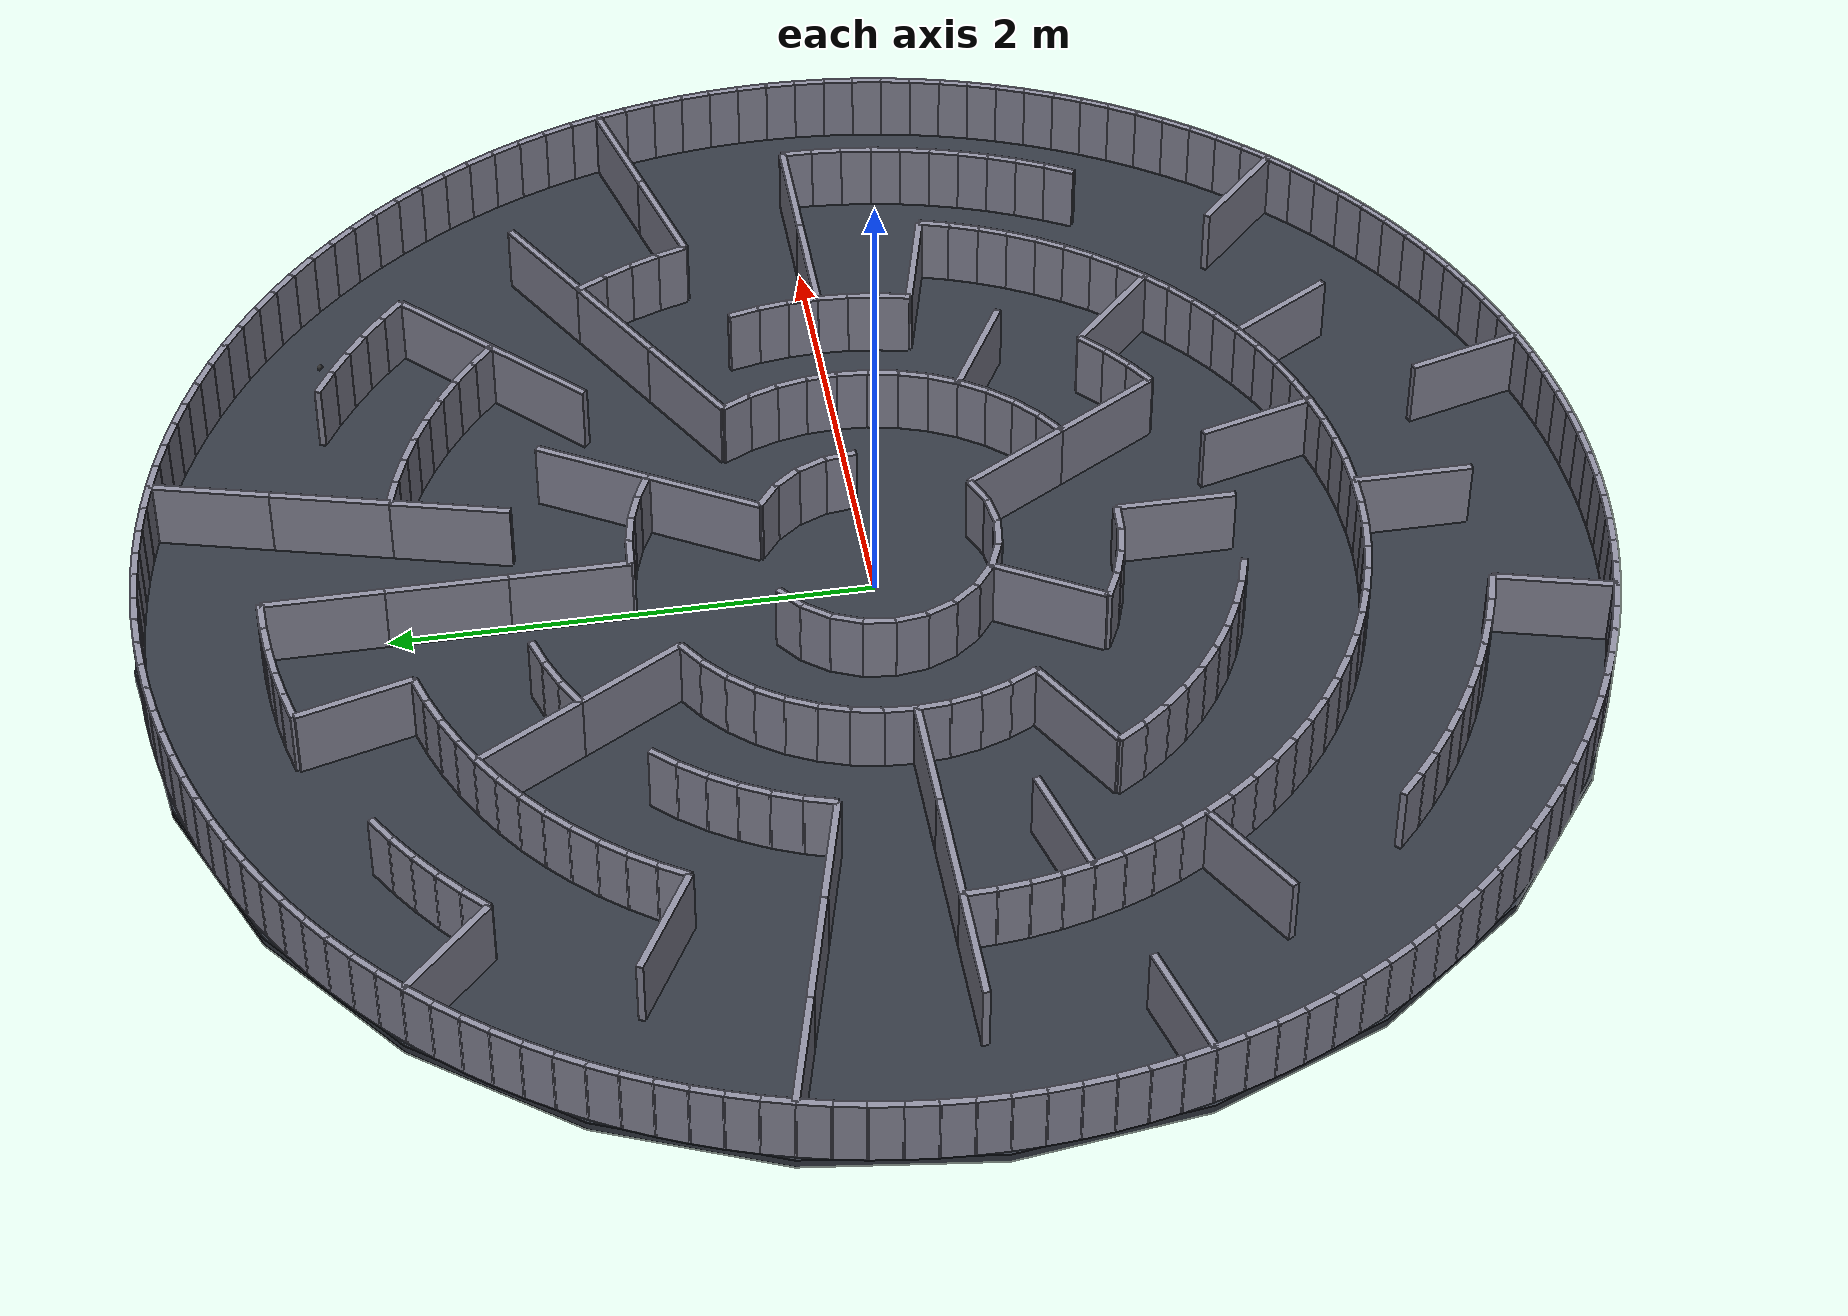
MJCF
<mujoco model="polar_maze">
  <compiler angle="degree" autolimits="true"/>
  <option timestep="0.005" integrator="implicitfast" gravity="0 0 -9.81"/>
  <visual>
    <global offwidth="1200" offheight="1200"/>
  </visual>

  <default>
    <default class="wall">
      <geom type="box" rgba="0.55 0.55 0.62 1" contype="1" conaffinity="1"/>
    </default>
    <default class="bot_body">
      <geom rgba="0.85 0.25 0.15 1" contype="2" conaffinity="1" mass="0.9" group="3"/>
    </default>
    <default class="bot_marker">
      <geom rgba="1 1 1 1" contype="0" conaffinity="0" mass="0.001" group="3"/>
    </default>
    <default class="wheel">
      <geom rgba="0.15 0.15 0.15 1" contype="2" conaffinity="1" mass="0.05" group="3"/>
    </default>
  </default>

  <asset>
    <texture name="grid" type="2d" builtin="checker" rgb1="0.18 0.2 0.24" rgb2="0.22 0.24 0.28"
             width="512" height="512"/>
    <material name="floor_mat" texture="grid" texrepeat="30 30" reflectance="0.05"/>
    <texture name="sky" type="skybox" builtin="gradient" rgb1="0.55 0.65 0.8" rgb2="0.05 0.05 0.1" width="256" height="256"/>
  </asset>

  <worldbody>
    <light name="top_light" pos="0 0 7.50" dir="0 0 -1" diffuse="0.9 0.9 0.9" directional="true"/>
    <light name="fill_light" pos="3.00 3.00 3.00" diffuse="0.35 0.35 0.35" directional="true"/>
    <geom name="floor" type="cylinder" size="3.0300 0.02" pos="0 0 -0.02"
          material="floor_mat" contype="1" conaffinity="1"/>

    <geom name="wr_0" type="box" pos="0.37500 0.64952 0.15000" euler="0 0 -30.00000" size="0.01500 0.25000 0.15000" class="wall"/>
    <geom name="wr_1" type="box" pos="-0.37500 -0.64952 0.15000" euler="0 0 150.00000" size="0.01500 0.25000 0.15000" class="wall"/>
    <geom name="wr_2" type="box" pos="0.37500 -0.64952 0.15000" euler="0 0 210.00000" size="0.01500 0.25000 0.15000" class="wall"/>
    <geom name="wr_3" type="box" pos="1.08253 0.62500 0.15000" euler="0 0 -60.00000" size="0.01500 0.25000 0.15000" class="wall"/>
    <geom name="wr_4" type="box" pos="0.62500 1.08253 0.15000" euler="0 0 -30.00000" size="0.01500 0.25000 0.15000" class="wall"/>
    <geom name="wr_5" type="box" pos="0.00000 1.25000 0.15000" euler="0 0 0.00000" size="0.01500 0.25000 0.15000" class="wall"/>
    <geom name="wr_6" type="box" pos="-0.62500 1.08253 0.15000" euler="0 0 30.00000" size="0.01500 0.25000 0.15000" class="wall"/>
    <geom name="wr_7" type="box" pos="-1.25000 0.00000 0.15000" euler="0 0 90.00000" size="0.01500 0.25000 0.15000" class="wall"/>
    <geom name="wr_8" type="box" pos="-1.08253 -0.62500 0.15000" euler="0 0 120.00000" size="0.01500 0.25000 0.15000" class="wall"/>
    <geom name="wr_9" type="box" pos="-0.00000 -1.25000 0.15000" euler="0 0 180.00000" size="0.01500 0.25000 0.15000" class="wall"/>
    <geom name="wr_10" type="box" pos="0.62500 -1.08253 0.15000" euler="0 0 210.00000" size="0.01500 0.25000 0.15000" class="wall"/>
    <geom name="wr_11" type="box" pos="1.08253 -0.62500 0.15000" euler="0 0 240.00000" size="0.01500 0.25000 0.15000" class="wall"/>
    <geom name="wr_12" type="box" pos="1.51554 0.87500 0.15000" euler="0 0 -60.00000" size="0.01500 0.25000 0.15000" class="wall"/>
    <geom name="wr_13" type="box" pos="1.23744 1.23744 0.15000" euler="0 0 -45.00000" size="0.01500 0.25000 0.15000" class="wall"/>
    <geom name="wr_14" type="box" pos="0.45293 1.69037 0.15000" euler="0 0 -15.00000" size="0.01500 0.25000 0.15000" class="wall"/>
    <geom name="wr_15" type="box" pos="0.00000 1.75000 0.15000" euler="0 0 -0.00000" size="0.01500 0.25000 0.15000" class="wall"/>
    <geom name="wr_16" type="box" pos="-0.87500 1.51554 0.15000" euler="0 0 30.00000" size="0.01500 0.25000 0.15000" class="wall"/>
    <geom name="wr_17" type="box" pos="-1.69037 0.45293 0.15000" euler="0 0 75.00000" size="0.01500 0.25000 0.15000" class="wall"/>
    <geom name="wr_18" type="box" pos="-1.75000 0.00000 0.15000" euler="0 0 90.00000" size="0.01500 0.25000 0.15000" class="wall"/>
    <geom name="wr_19" type="box" pos="-1.69037 -0.45293 0.15000" euler="0 0 105.00000" size="0.01500 0.25000 0.15000" class="wall"/>
    <geom name="wr_20" type="box" pos="0.45293 -1.69037 0.15000" euler="0 0 195.00000" size="0.01500 0.25000 0.15000" class="wall"/>
    <geom name="wr_21" type="box" pos="1.23744 -1.23744 0.15000" euler="0 0 225.00000" size="0.01500 0.25000 0.15000" class="wall"/>
    <geom name="wr_22" type="box" pos="1.69037 -0.45293 0.15000" euler="0 0 255.00000" size="0.01500 0.25000 0.15000" class="wall"/>
    <geom name="wr_23" type="box" pos="1.75000 -0.00000 0.15000" euler="0 0 270.00000" size="0.01500 0.25000 0.15000" class="wall"/>
    <geom name="wr_24" type="box" pos="2.17333 0.58234 0.15000" euler="0 0 -75.00000" size="0.01500 0.25000 0.15000" class="wall"/>
    <geom name="wr_25" type="box" pos="1.94856 1.12500 0.15000" euler="0 0 -60.00000" size="0.01500 0.25000 0.15000" class="wall"/>
    <geom name="wr_26" type="box" pos="1.59099 1.59099 0.15000" euler="0 0 -45.00000" size="0.01500 0.25000 0.15000" class="wall"/>
    <geom name="wr_27" type="box" pos="0.58234 2.17333 0.15000" euler="0 0 -15.00000" size="0.01500 0.25000 0.15000" class="wall"/>
    <geom name="wr_28" type="box" pos="0.00000 2.25000 0.15000" euler="0 0 -0.00000" size="0.01500 0.25000 0.15000" class="wall"/>
    <geom name="wr_29" type="box" pos="-0.58234 2.17333 0.15000" euler="0 0 15.00000" size="0.01500 0.25000 0.15000" class="wall"/>
    <geom name="wr_30" type="box" pos="-1.94856 1.12500 0.15000" euler="0 0 60.00000" size="0.01500 0.25000 0.15000" class="wall"/>
    <geom name="wr_31" type="box" pos="-2.17333 0.58234 0.15000" euler="0 0 75.00000" size="0.01500 0.25000 0.15000" class="wall"/>
    <geom name="wr_32" type="box" pos="-2.25000 0.00000 0.15000" euler="0 0 90.00000" size="0.01500 0.25000 0.15000" class="wall"/>
    <geom name="wr_33" type="box" pos="-1.94856 -1.12500 0.15000" euler="0 0 120.00000" size="0.01500 0.25000 0.15000" class="wall"/>
    <geom name="wr_34" type="box" pos="-0.00000 -2.25000 0.15000" euler="0 0 180.00000" size="0.01500 0.25000 0.15000" class="wall"/>
    <geom name="wr_35" type="box" pos="1.12500 -1.94856 0.15000" euler="0 0 210.00000" size="0.01500 0.25000 0.15000" class="wall"/>
    <geom name="wr_36" type="box" pos="2.25000 -0.00000 0.15000" euler="0 0 270.00000" size="0.01500 0.25000 0.15000" class="wall"/>
    <geom name="wr_37" type="box" pos="2.65630 0.71175 0.15000" euler="0 0 -75.00000" size="0.01500 0.25000 0.15000" class="wall"/>
    <geom name="wr_38" type="box" pos="0.71175 2.65630 0.15000" euler="0 0 -15.00000" size="0.01500 0.25000 0.15000" class="wall"/>
    <geom name="wr_39" type="box" pos="-1.94454 1.94454 0.15000" euler="0 0 45.00000" size="0.01500 0.25000 0.15000" class="wall"/>
    <geom name="wr_40" type="box" pos="-2.65630 0.71175 0.15000" euler="0 0 75.00000" size="0.01500 0.25000 0.15000" class="wall"/>
    <geom name="wr_41" type="box" pos="-2.65630 -0.71175 0.15000" euler="0 0 105.00000" size="0.01500 0.25000 0.15000" class="wall"/>
    <geom name="wr_42" type="box" pos="-0.71175 -2.65630 0.15000" euler="0 0 165.00000" size="0.01500 0.25000 0.15000" class="wall"/>
    <geom name="wr_43" type="box" pos="0.71175 -2.65630 0.15000" euler="0 0 195.00000" size="0.01500 0.25000 0.15000" class="wall"/>
    <geom name="wr_44" type="box" pos="1.94454 -1.94454 0.15000" euler="0 0 225.00000" size="0.01500 0.25000 0.15000" class="wall"/>
    <geom name="wa_45_0" type="box" pos="0.49572 0.06526 0.15000" euler="0 0 7.50000" size="0.01500 0.06872 0.15000" class="wall"/>
    <geom name="wa_45_1" type="box" pos="0.46194 0.19134 0.15000" euler="0 0 22.50000" size="0.01500 0.06872 0.15000" class="wall"/>
    <geom name="wa_45_2" type="box" pos="0.39668 0.30438 0.15000" euler="0 0 37.50000" size="0.01500 0.06872 0.15000" class="wall"/>
    <geom name="wa_45_3" type="box" pos="0.30438 0.39668 0.15000" euler="0 0 52.50000" size="0.01500 0.06872 0.15000" class="wall"/>
    <geom name="wa_46_0" type="box" pos="-0.30438 0.39668 0.15000" euler="0 0 127.50000" size="0.01500 0.06872 0.15000" class="wall"/>
    <geom name="wa_46_1" type="box" pos="-0.39668 0.30438 0.15000" euler="0 0 142.50000" size="0.01500 0.06872 0.15000" class="wall"/>
    <geom name="wa_46_2" type="box" pos="-0.46194 0.19134 0.15000" euler="0 0 157.50000" size="0.01500 0.06872 0.15000" class="wall"/>
    <geom name="wa_46_3" type="box" pos="-0.49572 0.06526 0.15000" euler="0 0 172.50000" size="0.01500 0.06872 0.15000" class="wall"/>
    <geom name="wa_47_0" type="box" pos="-0.49572 -0.06526 0.15000" euler="0 0 187.50000" size="0.01500 0.06872 0.15000" class="wall"/>
    <geom name="wa_47_1" type="box" pos="-0.46194 -0.19134 0.15000" euler="0 0 202.50000" size="0.01500 0.06872 0.15000" class="wall"/>
    <geom name="wa_47_2" type="box" pos="-0.39668 -0.30438 0.15000" euler="0 0 217.50000" size="0.01500 0.06872 0.15000" class="wall"/>
    <geom name="wa_47_3" type="box" pos="-0.30438 -0.39668 0.15000" euler="0 0 232.50000" size="0.01500 0.06872 0.15000" class="wall"/>
    <geom name="wa_48_0" type="box" pos="-0.19134 -0.46194 0.15000" euler="0 0 247.50000" size="0.01500 0.06872 0.15000" class="wall"/>
    <geom name="wa_48_1" type="box" pos="-0.06526 -0.49572 0.15000" euler="0 0 262.50000" size="0.01500 0.06872 0.15000" class="wall"/>
    <geom name="wa_48_2" type="box" pos="0.06526 -0.49572 0.15000" euler="0 0 277.50000" size="0.01500 0.06872 0.15000" class="wall"/>
    <geom name="wa_48_3" type="box" pos="0.19134 -0.46194 0.15000" euler="0 0 292.50000" size="0.01500 0.06872 0.15000" class="wall"/>
    <geom name="wa_49_0" type="box" pos="0.99786 0.06540 0.15000" euler="0 0 3.75000" size="0.01500 0.06872 0.15000" class="wall"/>
    <geom name="wa_49_1" type="box" pos="0.98079 0.19509 0.15000" euler="0 0 11.25000" size="0.01500 0.06872 0.15000" class="wall"/>
    <geom name="wa_49_2" type="box" pos="0.94693 0.32144 0.15000" euler="0 0 18.75000" size="0.01500 0.06872 0.15000" class="wall"/>
    <geom name="wa_49_3" type="box" pos="0.89687 0.44229 0.15000" euler="0 0 26.25000" size="0.01500 0.06872 0.15000" class="wall"/>
    <geom name="wa_50_0" type="box" pos="0.44229 0.89687 0.15000" euler="0 0 63.75000" size="0.01500 0.06872 0.15000" class="wall"/>
    <geom name="wa_50_1" type="box" pos="0.32144 0.94693 0.15000" euler="0 0 71.25000" size="0.01500 0.06872 0.15000" class="wall"/>
    <geom name="wa_50_2" type="box" pos="0.19509 0.98079 0.15000" euler="0 0 78.75000" size="0.01500 0.06872 0.15000" class="wall"/>
    <geom name="wa_50_3" type="box" pos="0.06540 0.99786 0.15000" euler="0 0 86.25000" size="0.01500 0.06872 0.15000" class="wall"/>
    <geom name="wa_51_0" type="box" pos="-0.55557 0.83147 0.15000" euler="0 0 123.75000" size="0.01500 0.06872 0.15000" class="wall"/>
    <geom name="wa_51_1" type="box" pos="-0.65935 0.75184 0.15000" euler="0 0 131.25000" size="0.01500 0.06872 0.15000" class="wall"/>
    <geom name="wa_51_2" type="box" pos="-0.75184 0.65935 0.15000" euler="0 0 138.75000" size="0.01500 0.06872 0.15000" class="wall"/>
    <geom name="wa_51_3" type="box" pos="-0.83147 0.55557 0.15000" euler="0 0 146.25000" size="0.01500 0.06872 0.15000" class="wall"/>
    <geom name="wa_52_0" type="box" pos="-0.89687 0.44229 0.15000" euler="0 0 153.75000" size="0.01500 0.06872 0.15000" class="wall"/>
    <geom name="wa_52_1" type="box" pos="-0.94693 0.32144 0.15000" euler="0 0 161.25000" size="0.01500 0.06872 0.15000" class="wall"/>
    <geom name="wa_52_2" type="box" pos="-0.98079 0.19509 0.15000" euler="0 0 168.75000" size="0.01500 0.06872 0.15000" class="wall"/>
    <geom name="wa_52_3" type="box" pos="-0.99786 0.06540 0.15000" euler="0 0 176.25000" size="0.01500 0.06872 0.15000" class="wall"/>
    <geom name="wa_53_0" type="box" pos="-0.99786 -0.06540 0.15000" euler="0 0 183.75000" size="0.01500 0.06872 0.15000" class="wall"/>
    <geom name="wa_53_1" type="box" pos="-0.98079 -0.19509 0.15000" euler="0 0 191.25000" size="0.01500 0.06872 0.15000" class="wall"/>
    <geom name="wa_53_2" type="box" pos="-0.94693 -0.32144 0.15000" euler="0 0 198.75000" size="0.01500 0.06872 0.15000" class="wall"/>
    <geom name="wa_53_3" type="box" pos="-0.89687 -0.44229 0.15000" euler="0 0 206.25000" size="0.01500 0.06872 0.15000" class="wall"/>
    <geom name="wa_54_0" type="box" pos="-0.44229 -0.89687 0.15000" euler="0 0 243.75000" size="0.01500 0.06872 0.15000" class="wall"/>
    <geom name="wa_54_1" type="box" pos="-0.32144 -0.94693 0.15000" euler="0 0 251.25000" size="0.01500 0.06872 0.15000" class="wall"/>
    <geom name="wa_54_2" type="box" pos="-0.19509 -0.98079 0.15000" euler="0 0 258.75000" size="0.01500 0.06872 0.15000" class="wall"/>
    <geom name="wa_54_3" type="box" pos="-0.06540 -0.99786 0.15000" euler="0 0 266.25000" size="0.01500 0.06872 0.15000" class="wall"/>
    <geom name="wa_55_0" type="box" pos="0.55557 -0.83147 0.15000" euler="0 0 303.75000" size="0.01500 0.06872 0.15000" class="wall"/>
    <geom name="wa_55_1" type="box" pos="0.65935 -0.75184 0.15000" euler="0 0 311.25000" size="0.01500 0.06872 0.15000" class="wall"/>
    <geom name="wa_55_2" type="box" pos="0.75184 -0.65935 0.15000" euler="0 0 318.75000" size="0.01500 0.06872 0.15000" class="wall"/>
    <geom name="wa_55_3" type="box" pos="0.83147 -0.55557 0.15000" euler="0 0 326.25000" size="0.01500 0.06872 0.15000" class="wall"/>
    <geom name="wa_56_0" type="box" pos="0.89687 -0.44229 0.15000" euler="0 0 333.75000" size="0.01500 0.06872 0.15000" class="wall"/>
    <geom name="wa_56_1" type="box" pos="0.94693 -0.32144 0.15000" euler="0 0 341.25000" size="0.01500 0.06872 0.15000" class="wall"/>
    <geom name="wa_56_2" type="box" pos="0.98079 -0.19509 0.15000" euler="0 0 348.75000" size="0.01500 0.06872 0.15000" class="wall"/>
    <geom name="wa_56_3" type="box" pos="0.99786 -0.06540 0.15000" euler="0 0 356.25000" size="0.01500 0.06872 0.15000" class="wall"/>
    <geom name="wa_57_0" type="box" pos="1.49857 0.06543 0.15000" euler="0 0 2.50000" size="0.01500 0.06872 0.15000" class="wall"/>
    <geom name="wa_57_1" type="box" pos="1.48717 0.19579 0.15000" euler="0 0 7.50000" size="0.01500 0.06872 0.15000" class="wall"/>
    <geom name="wa_57_2" type="box" pos="1.46444 0.32466 0.15000" euler="0 0 12.50000" size="0.01500 0.06872 0.15000" class="wall"/>
    <geom name="wa_58_0" type="box" pos="-0.45106 1.43058 0.15000" euler="0 0 107.50000" size="0.01500 0.06872 0.15000" class="wall"/>
    <geom name="wa_58_1" type="box" pos="-0.57403 1.38582 0.15000" euler="0 0 112.50000" size="0.01500 0.06872 0.15000" class="wall"/>
    <geom name="wa_58_2" type="box" pos="-0.69262 1.33052 0.15000" euler="0 0 117.50000" size="0.01500 0.06872 0.15000" class="wall"/>
    <geom name="wa_59_0" type="box" pos="-1.10592 1.01339 0.15000" euler="0 0 137.50000" size="0.01500 0.06872 0.15000" class="wall"/>
    <geom name="wa_59_1" type="box" pos="-1.19003 0.91314 0.15000" euler="0 0 142.50000" size="0.01500 0.06872 0.15000" class="wall"/>
    <geom name="wa_59_2" type="box" pos="-1.26509 0.80595 0.15000" euler="0 0 147.50000" size="0.01500 0.06872 0.15000" class="wall"/>
    <geom name="wa_60_0" type="box" pos="-1.33052 0.69262 0.15000" euler="0 0 152.50000" size="0.01500 0.06872 0.15000" class="wall"/>
    <geom name="wa_60_1" type="box" pos="-1.38582 0.57403 0.15000" euler="0 0 157.50000" size="0.01500 0.06872 0.15000" class="wall"/>
    <geom name="wa_60_2" type="box" pos="-1.43058 0.45106 0.15000" euler="0 0 162.50000" size="0.01500 0.06872 0.15000" class="wall"/>
    <geom name="wa_61_0" type="box" pos="-1.26509 -0.80595 0.15000" euler="0 0 212.50000" size="0.01500 0.06872 0.15000" class="wall"/>
    <geom name="wa_61_1" type="box" pos="-1.19003 -0.91314 0.15000" euler="0 0 217.50000" size="0.01500 0.06872 0.15000" class="wall"/>
    <geom name="wa_61_2" type="box" pos="-1.10592 -1.01339 0.15000" euler="0 0 222.50000" size="0.01500 0.06872 0.15000" class="wall"/>
    <geom name="wa_62_0" type="box" pos="-1.01339 -1.10592 0.15000" euler="0 0 227.50000" size="0.01500 0.06872 0.15000" class="wall"/>
    <geom name="wa_62_1" type="box" pos="-0.91314 -1.19003 0.15000" euler="0 0 232.50000" size="0.01500 0.06872 0.15000" class="wall"/>
    <geom name="wa_62_2" type="box" pos="-0.80595 -1.26509 0.15000" euler="0 0 237.50000" size="0.01500 0.06872 0.15000" class="wall"/>
    <geom name="wa_63_0" type="box" pos="-0.69262 -1.33052 0.15000" euler="0 0 242.50000" size="0.01500 0.06872 0.15000" class="wall"/>
    <geom name="wa_63_1" type="box" pos="-0.57403 -1.38582 0.15000" euler="0 0 247.50000" size="0.01500 0.06872 0.15000" class="wall"/>
    <geom name="wa_63_2" type="box" pos="-0.45106 -1.43058 0.15000" euler="0 0 252.50000" size="0.01500 0.06872 0.15000" class="wall"/>
    <geom name="wa_64_0" type="box" pos="0.80595 -1.26509 0.15000" euler="0 0 302.50000" size="0.01500 0.06872 0.15000" class="wall"/>
    <geom name="wa_64_1" type="box" pos="0.91314 -1.19003 0.15000" euler="0 0 307.50000" size="0.01500 0.06872 0.15000" class="wall"/>
    <geom name="wa_64_2" type="box" pos="1.01339 -1.10592 0.15000" euler="0 0 312.50000" size="0.01500 0.06872 0.15000" class="wall"/>
    <geom name="wa_65_0" type="box" pos="1.46444 -0.32466 0.15000" euler="0 0 347.50000" size="0.01500 0.06872 0.15000" class="wall"/>
    <geom name="wa_65_1" type="box" pos="1.48717 -0.19579 0.15000" euler="0 0 352.50000" size="0.01500 0.06872 0.15000" class="wall"/>
    <geom name="wa_65_2" type="box" pos="1.49857 -0.06543 0.15000" euler="0 0 357.50000" size="0.01500 0.06872 0.15000" class="wall"/>
    <geom name="wa_66_0" type="box" pos="1.91388 0.58057 0.15000" euler="0 0 16.87500" size="0.01500 0.06872 0.15000" class="wall"/>
    <geom name="wa_66_1" type="box" pos="1.87181 0.70450 0.15000" euler="0 0 20.62500" size="0.01500 0.06872 0.15000" class="wall"/>
    <geom name="wa_66_2" type="box" pos="1.82173 0.82541 0.15000" euler="0 0 24.37500" size="0.01500 0.06872 0.15000" class="wall"/>
    <geom name="wa_66_3" type="box" pos="1.76384 0.94279 0.15000" euler="0 0 28.12500" size="0.01500 0.06872 0.15000" class="wall"/>
    <geom name="wa_67_0" type="box" pos="1.36718 1.45973 0.15000" euler="0 0 46.87500" size="0.01500 0.06872 0.15000" class="wall"/>
    <geom name="wa_67_1" type="box" pos="1.26879 1.54602 0.15000" euler="0 0 50.62500" size="0.01500 0.06872 0.15000" class="wall"/>
    <geom name="wa_67_2" type="box" pos="1.16496 1.62569 0.15000" euler="0 0 54.37500" size="0.01500 0.06872 0.15000" class="wall"/>
    <geom name="wa_67_3" type="box" pos="1.05614 1.69840 0.15000" euler="0 0 58.12500" size="0.01500 0.06872 0.15000" class="wall"/>
    <geom name="wa_68_0" type="box" pos="0.94279 1.76384 0.15000" euler="0 0 61.87500" size="0.01500 0.06872 0.15000" class="wall"/>
    <geom name="wa_68_1" type="box" pos="0.82541 1.82173 0.15000" euler="0 0 65.62500" size="0.01500 0.06872 0.15000" class="wall"/>
    <geom name="wa_68_2" type="box" pos="0.70450 1.87181 0.15000" euler="0 0 69.37500" size="0.01500 0.06872 0.15000" class="wall"/>
    <geom name="wa_68_3" type="box" pos="0.58057 1.91388 0.15000" euler="0 0 73.12500" size="0.01500 0.06872 0.15000" class="wall"/>
    <geom name="wa_69_0" type="box" pos="-0.58057 1.91388 0.15000" euler="0 0 106.87500" size="0.01500 0.06872 0.15000" class="wall"/>
    <geom name="wa_69_1" type="box" pos="-0.70450 1.87181 0.15000" euler="0 0 110.62500" size="0.01500 0.06872 0.15000" class="wall"/>
    <geom name="wa_69_2" type="box" pos="-0.82541 1.82173 0.15000" euler="0 0 114.37500" size="0.01500 0.06872 0.15000" class="wall"/>
    <geom name="wa_69_3" type="box" pos="-0.94279 1.76384 0.15000" euler="0 0 118.12500" size="0.01500 0.06872 0.15000" class="wall"/>
    <geom name="wa_70_0" type="box" pos="-1.05614 1.69840 0.15000" euler="0 0 121.87500" size="0.01500 0.06872 0.15000" class="wall"/>
    <geom name="wa_70_1" type="box" pos="-1.16496 1.62569 0.15000" euler="0 0 125.62500" size="0.01500 0.06872 0.15000" class="wall"/>
    <geom name="wa_70_2" type="box" pos="-1.26879 1.54602 0.15000" euler="0 0 129.37500" size="0.01500 0.06872 0.15000" class="wall"/>
    <geom name="wa_70_3" type="box" pos="-1.36718 1.45973 0.15000" euler="0 0 133.12500" size="0.01500 0.06872 0.15000" class="wall"/>
    <geom name="wa_71_0" type="box" pos="-1.45973 1.36718 0.15000" euler="0 0 136.87500" size="0.01500 0.06872 0.15000" class="wall"/>
    <geom name="wa_71_1" type="box" pos="-1.54602 1.26879 0.15000" euler="0 0 140.62500" size="0.01500 0.06872 0.15000" class="wall"/>
    <geom name="wa_71_2" type="box" pos="-1.62569 1.16496 0.15000" euler="0 0 144.37500" size="0.01500 0.06872 0.15000" class="wall"/>
    <geom name="wa_71_3" type="box" pos="-1.69840 1.05614 0.15000" euler="0 0 148.12500" size="0.01500 0.06872 0.15000" class="wall"/>
    <geom name="wa_72_0" type="box" pos="-1.99893 -0.06544 0.15000" euler="0 0 181.87500" size="0.01500 0.06872 0.15000" class="wall"/>
    <geom name="wa_72_1" type="box" pos="-1.99037 -0.19603 0.15000" euler="0 0 185.62500" size="0.01500 0.06872 0.15000" class="wall"/>
    <geom name="wa_72_2" type="box" pos="-1.97329 -0.32579 0.15000" euler="0 0 189.37500" size="0.01500 0.06872 0.15000" class="wall"/>
    <geom name="wa_72_3" type="box" pos="-1.94775 -0.45415 0.15000" euler="0 0 193.12500" size="0.01500 0.06872 0.15000" class="wall"/>
    <geom name="wa_73_0" type="box" pos="-1.91388 -0.58057 0.15000" euler="0 0 196.87500" size="0.01500 0.06872 0.15000" class="wall"/>
    <geom name="wa_73_1" type="box" pos="-1.87181 -0.70450 0.15000" euler="0 0 200.62500" size="0.01500 0.06872 0.15000" class="wall"/>
    <geom name="wa_73_2" type="box" pos="-1.82173 -0.82541 0.15000" euler="0 0 204.37500" size="0.01500 0.06872 0.15000" class="wall"/>
    <geom name="wa_73_3" type="box" pos="-1.76384 -0.94279 0.15000" euler="0 0 208.12500" size="0.01500 0.06872 0.15000" class="wall"/>
    <geom name="wa_74_0" type="box" pos="-1.69840 -1.05614 0.15000" euler="0 0 211.87500" size="0.01500 0.06872 0.15000" class="wall"/>
    <geom name="wa_74_1" type="box" pos="-1.62569 -1.16496 0.15000" euler="0 0 215.62500" size="0.01500 0.06872 0.15000" class="wall"/>
    <geom name="wa_74_2" type="box" pos="-1.54602 -1.26879 0.15000" euler="0 0 219.37500" size="0.01500 0.06872 0.15000" class="wall"/>
    <geom name="wa_74_3" type="box" pos="-1.45973 -1.36718 0.15000" euler="0 0 223.12500" size="0.01500 0.06872 0.15000" class="wall"/>
    <geom name="wa_75_0" type="box" pos="-1.36718 -1.45973 0.15000" euler="0 0 226.87500" size="0.01500 0.06872 0.15000" class="wall"/>
    <geom name="wa_75_1" type="box" pos="-1.26879 -1.54602 0.15000" euler="0 0 230.62500" size="0.01500 0.06872 0.15000" class="wall"/>
    <geom name="wa_75_2" type="box" pos="-1.16496 -1.62569 0.15000" euler="0 0 234.37500" size="0.01500 0.06872 0.15000" class="wall"/>
    <geom name="wa_75_3" type="box" pos="-1.05614 -1.69840 0.15000" euler="0 0 238.12500" size="0.01500 0.06872 0.15000" class="wall"/>
    <geom name="wa_76_0" type="box" pos="-0.94279 -1.76384 0.15000" euler="0 0 241.87500" size="0.01500 0.06872 0.15000" class="wall"/>
    <geom name="wa_76_1" type="box" pos="-0.82541 -1.82173 0.15000" euler="0 0 245.62500" size="0.01500 0.06872 0.15000" class="wall"/>
    <geom name="wa_76_2" type="box" pos="-0.70450 -1.87181 0.15000" euler="0 0 249.37500" size="0.01500 0.06872 0.15000" class="wall"/>
    <geom name="wa_76_3" type="box" pos="-0.58057 -1.91388 0.15000" euler="0 0 253.12500" size="0.01500 0.06872 0.15000" class="wall"/>
    <geom name="wa_77_0" type="box" pos="-0.45415 -1.94775 0.15000" euler="0 0 256.87500" size="0.01500 0.06872 0.15000" class="wall"/>
    <geom name="wa_77_1" type="box" pos="-0.32579 -1.97329 0.15000" euler="0 0 260.62500" size="0.01500 0.06872 0.15000" class="wall"/>
    <geom name="wa_77_2" type="box" pos="-0.19603 -1.99037 0.15000" euler="0 0 264.37500" size="0.01500 0.06872 0.15000" class="wall"/>
    <geom name="wa_77_3" type="box" pos="-0.06544 -1.99893 0.15000" euler="0 0 268.12500" size="0.01500 0.06872 0.15000" class="wall"/>
    <geom name="wa_78_0" type="box" pos="0.06544 -1.99893 0.15000" euler="0 0 271.87500" size="0.01500 0.06872 0.15000" class="wall"/>
    <geom name="wa_78_1" type="box" pos="0.19603 -1.99037 0.15000" euler="0 0 275.62500" size="0.01500 0.06872 0.15000" class="wall"/>
    <geom name="wa_78_2" type="box" pos="0.32579 -1.97329 0.15000" euler="0 0 279.37500" size="0.01500 0.06872 0.15000" class="wall"/>
    <geom name="wa_78_3" type="box" pos="0.45415 -1.94775 0.15000" euler="0 0 283.12500" size="0.01500 0.06872 0.15000" class="wall"/>
    <geom name="wa_79_0" type="box" pos="0.58057 -1.91388 0.15000" euler="0 0 286.87500" size="0.01500 0.06872 0.15000" class="wall"/>
    <geom name="wa_79_1" type="box" pos="0.70450 -1.87181 0.15000" euler="0 0 290.62500" size="0.01500 0.06872 0.15000" class="wall"/>
    <geom name="wa_79_2" type="box" pos="0.82541 -1.82173 0.15000" euler="0 0 294.37500" size="0.01500 0.06872 0.15000" class="wall"/>
    <geom name="wa_79_3" type="box" pos="0.94279 -1.76384 0.15000" euler="0 0 298.12500" size="0.01500 0.06872 0.15000" class="wall"/>
    <geom name="wa_80_0" type="box" pos="1.05614 -1.69840 0.15000" euler="0 0 301.87500" size="0.01500 0.06872 0.15000" class="wall"/>
    <geom name="wa_80_1" type="box" pos="1.16496 -1.62569 0.15000" euler="0 0 305.62500" size="0.01500 0.06872 0.15000" class="wall"/>
    <geom name="wa_80_2" type="box" pos="1.26879 -1.54602 0.15000" euler="0 0 309.37500" size="0.01500 0.06872 0.15000" class="wall"/>
    <geom name="wa_80_3" type="box" pos="1.36718 -1.45973 0.15000" euler="0 0 313.12500" size="0.01500 0.06872 0.15000" class="wall"/>
    <geom name="wa_81_0" type="box" pos="1.45973 -1.36718 0.15000" euler="0 0 316.87500" size="0.01500 0.06872 0.15000" class="wall"/>
    <geom name="wa_81_1" type="box" pos="1.54602 -1.26879 0.15000" euler="0 0 320.62500" size="0.01500 0.06872 0.15000" class="wall"/>
    <geom name="wa_81_2" type="box" pos="1.62569 -1.16496 0.15000" euler="0 0 324.37500" size="0.01500 0.06872 0.15000" class="wall"/>
    <geom name="wa_81_3" type="box" pos="1.69840 -1.05614 0.15000" euler="0 0 328.12500" size="0.01500 0.06872 0.15000" class="wall"/>
    <geom name="wa_82_0" type="box" pos="1.76384 -0.94279 0.15000" euler="0 0 331.87500" size="0.01500 0.06872 0.15000" class="wall"/>
    <geom name="wa_82_1" type="box" pos="1.82173 -0.82541 0.15000" euler="0 0 335.62500" size="0.01500 0.06872 0.15000" class="wall"/>
    <geom name="wa_82_2" type="box" pos="1.87181 -0.70450 0.15000" euler="0 0 339.37500" size="0.01500 0.06872 0.15000" class="wall"/>
    <geom name="wa_82_3" type="box" pos="1.91388 -0.58057 0.15000" euler="0 0 343.12500" size="0.01500 0.06872 0.15000" class="wall"/>
    <geom name="wa_83_0" type="box" pos="1.72089 1.81344 0.15000" euler="0 0 46.50000" size="0.01500 0.06872 0.15000" class="wall"/>
    <geom name="wa_83_1" type="box" pos="1.62362 1.90101 0.15000" euler="0 0 49.50000" size="0.01500 0.06872 0.15000" class="wall"/>
    <geom name="wa_83_2" type="box" pos="1.52190 1.98338 0.15000" euler="0 0 52.50000" size="0.01500 0.06872 0.15000" class="wall"/>
    <geom name="wa_83_3" type="box" pos="1.41602 2.06032 0.15000" euler="0 0 55.50000" size="0.01500 0.06872 0.15000" class="wall"/>
    <geom name="wa_83_4" type="box" pos="1.30625 2.13160 0.15000" euler="0 0 58.50000" size="0.01500 0.06872 0.15000" class="wall"/>
    <geom name="wa_84_0" type="box" pos="-0.06544 2.49914 0.15000" euler="0 0 91.50000" size="0.01500 0.06872 0.15000" class="wall"/>
    <geom name="wa_84_1" type="box" pos="-0.19615 2.49229 0.15000" euler="0 0 94.50000" size="0.01500 0.06872 0.15000" class="wall"/>
    <geom name="wa_84_2" type="box" pos="-0.32632 2.47861 0.15000" euler="0 0 97.50000" size="0.01500 0.06872 0.15000" class="wall"/>
    <geom name="wa_84_3" type="box" pos="-0.45559 2.45814 0.15000" euler="0 0 100.50000" size="0.01500 0.06872 0.15000" class="wall"/>
    <geom name="wa_84_4" type="box" pos="-0.58361 2.43092 0.15000" euler="0 0 103.50000" size="0.01500 0.06872 0.15000" class="wall"/>
    <geom name="wa_85_0" type="box" pos="-1.30625 2.13160 0.15000" euler="0 0 121.50000" size="0.01500 0.06872 0.15000" class="wall"/>
    <geom name="wa_85_1" type="box" pos="-1.41602 2.06032 0.15000" euler="0 0 124.50000" size="0.01500 0.06872 0.15000" class="wall"/>
    <geom name="wa_85_2" type="box" pos="-1.52190 1.98338 0.15000" euler="0 0 127.50000" size="0.01500 0.06872 0.15000" class="wall"/>
    <geom name="wa_85_3" type="box" pos="-1.62362 1.90101 0.15000" euler="0 0 130.50000" size="0.01500 0.06872 0.15000" class="wall"/>
    <geom name="wa_85_4" type="box" pos="-1.72089 1.81344 0.15000" euler="0 0 133.50000" size="0.01500 0.06872 0.15000" class="wall"/>
    <geom name="wa_86_0" type="box" pos="-1.72089 -1.81344 0.15000" euler="0 0 226.50000" size="0.01500 0.06872 0.15000" class="wall"/>
    <geom name="wa_86_1" type="box" pos="-1.62362 -1.90101 0.15000" euler="0 0 229.50000" size="0.01500 0.06872 0.15000" class="wall"/>
    <geom name="wa_86_2" type="box" pos="-1.52190 -1.98338 0.15000" euler="0 0 232.50000" size="0.01500 0.06872 0.15000" class="wall"/>
    <geom name="wa_86_3" type="box" pos="-1.41602 -2.06032 0.15000" euler="0 0 235.50000" size="0.01500 0.06872 0.15000" class="wall"/>
    <geom name="wa_86_4" type="box" pos="-1.30625 -2.13160 0.15000" euler="0 0 238.50000" size="0.01500 0.06872 0.15000" class="wall"/>
    <geom name="wa_87_0" type="box" pos="-1.19290 -2.19704 0.15000" euler="0 0 241.50000" size="0.01500 0.06872 0.15000" class="wall"/>
    <geom name="wa_87_1" type="box" pos="-1.07628 -2.25646 0.15000" euler="0 0 244.50000" size="0.01500 0.06872 0.15000" class="wall"/>
    <geom name="wa_87_2" type="box" pos="-0.95671 -2.30970 0.15000" euler="0 0 247.50000" size="0.01500 0.06872 0.15000" class="wall"/>
    <geom name="wa_87_3" type="box" pos="-0.83452 -2.35660 0.15000" euler="0 0 250.50000" size="0.01500 0.06872 0.15000" class="wall"/>
    <geom name="wa_87_4" type="box" pos="-0.71004 -2.39705 0.15000" euler="0 0 253.50000" size="0.01500 0.06872 0.15000" class="wall"/>
    <geom name="wa_88_0" type="box" pos="2.19704 -1.19290 0.15000" euler="0 0 331.50000" size="0.01500 0.06872 0.15000" class="wall"/>
    <geom name="wa_88_1" type="box" pos="2.25646 -1.07628 0.15000" euler="0 0 334.50000" size="0.01500 0.06872 0.15000" class="wall"/>
    <geom name="wa_88_2" type="box" pos="2.30970 -0.95671 0.15000" euler="0 0 337.50000" size="0.01500 0.06872 0.15000" class="wall"/>
    <geom name="wa_88_3" type="box" pos="2.35660 -0.83452 0.15000" euler="0 0 340.50000" size="0.01500 0.06872 0.15000" class="wall"/>
    <geom name="wa_88_4" type="box" pos="2.39705 -0.71004 0.15000" euler="0 0 343.50000" size="0.01500 0.06872 0.15000" class="wall"/>
    <geom name="wa_89_0" type="box" pos="2.43092 -0.58361 0.15000" euler="0 0 346.50000" size="0.01500 0.06872 0.15000" class="wall"/>
    <geom name="wa_89_1" type="box" pos="2.45814 -0.45559 0.15000" euler="0 0 349.50000" size="0.01500 0.06872 0.15000" class="wall"/>
    <geom name="wa_89_2" type="box" pos="2.47861 -0.32632 0.15000" euler="0 0 352.50000" size="0.01500 0.06872 0.15000" class="wall"/>
    <geom name="wa_89_3" type="box" pos="2.49229 -0.19615 0.15000" euler="0 0 355.50000" size="0.01500 0.06872 0.15000" class="wall"/>
    <geom name="wa_89_4" type="box" pos="2.49914 -0.06544 0.15000" euler="0 0 358.50000" size="0.01500 0.06872 0.15000" class="wall"/>
    <geom name="wo_90_0" type="box" pos="2.99929 0.06544 0.15000" euler="0 0 1.25000" size="0.01500 0.06872 0.15000" class="wall"/>
    <geom name="wo_90_1" type="box" pos="2.99358 0.19621 0.15000" euler="0 0 3.75000" size="0.01500 0.06872 0.15000" class="wall"/>
    <geom name="wo_90_2" type="box" pos="2.98217 0.32660 0.15000" euler="0 0 6.25000" size="0.01500 0.06872 0.15000" class="wall"/>
    <geom name="wo_90_3" type="box" pos="2.96508 0.45637 0.15000" euler="0 0 8.75000" size="0.01500 0.06872 0.15000" class="wall"/>
    <geom name="wo_90_4" type="box" pos="2.94236 0.58527 0.15000" euler="0 0 11.25000" size="0.01500 0.06872 0.15000" class="wall"/>
    <geom name="wo_90_5" type="box" pos="2.91403 0.71306 0.15000" euler="0 0 13.75000" size="0.01500 0.06872 0.15000" class="wall"/>
    <geom name="wo_91_0" type="box" pos="2.88015 0.83949 0.15000" euler="0 0 16.25000" size="0.01500 0.06872 0.15000" class="wall"/>
    <geom name="wo_91_1" type="box" pos="2.84079 0.96432 0.15000" euler="0 0 18.75000" size="0.01500 0.06872 0.15000" class="wall"/>
    <geom name="wo_91_2" type="box" pos="2.79602 1.08731 0.15000" euler="0 0 21.25000" size="0.01500 0.06872 0.15000" class="wall"/>
    <geom name="wo_91_3" type="box" pos="2.74593 1.20824 0.15000" euler="0 0 23.75000" size="0.01500 0.06872 0.15000" class="wall"/>
    <geom name="wo_91_4" type="box" pos="2.69062 1.32687 0.15000" euler="0 0 26.25000" size="0.01500 0.06872 0.15000" class="wall"/>
    <geom name="wo_91_5" type="box" pos="2.63018 1.44297 0.15000" euler="0 0 28.75000" size="0.01500 0.06872 0.15000" class="wall"/>
    <geom name="wo_92_0" type="box" pos="2.56474 1.55632 0.15000" euler="0 0 31.25000" size="0.01500 0.06872 0.15000" class="wall"/>
    <geom name="wo_92_1" type="box" pos="2.49441 1.66671 0.15000" euler="0 0 33.75000" size="0.01500 0.06872 0.15000" class="wall"/>
    <geom name="wo_92_2" type="box" pos="2.41933 1.77393 0.15000" euler="0 0 36.25000" size="0.01500 0.06872 0.15000" class="wall"/>
    <geom name="wo_92_3" type="box" pos="2.33965 1.87777 0.15000" euler="0 0 38.75000" size="0.01500 0.06872 0.15000" class="wall"/>
    <geom name="wo_92_4" type="box" pos="2.25552 1.97804 0.15000" euler="0 0 41.25000" size="0.01500 0.06872 0.15000" class="wall"/>
    <geom name="wo_92_5" type="box" pos="2.16709 2.07454 0.15000" euler="0 0 43.75000" size="0.01500 0.06872 0.15000" class="wall"/>
    <geom name="wo_93_0" type="box" pos="2.07454 2.16709 0.15000" euler="0 0 46.25000" size="0.01500 0.06872 0.15000" class="wall"/>
    <geom name="wo_93_1" type="box" pos="1.97804 2.25552 0.15000" euler="0 0 48.75000" size="0.01500 0.06872 0.15000" class="wall"/>
    <geom name="wo_93_2" type="box" pos="1.87777 2.33965 0.15000" euler="0 0 51.25000" size="0.01500 0.06872 0.15000" class="wall"/>
    <geom name="wo_93_3" type="box" pos="1.77393 2.41933 0.15000" euler="0 0 53.75000" size="0.01500 0.06872 0.15000" class="wall"/>
    <geom name="wo_93_4" type="box" pos="1.66671 2.49441 0.15000" euler="0 0 56.25000" size="0.01500 0.06872 0.15000" class="wall"/>
    <geom name="wo_93_5" type="box" pos="1.55632 2.56474 0.15000" euler="0 0 58.75000" size="0.01500 0.06872 0.15000" class="wall"/>
    <geom name="wo_94_0" type="box" pos="1.44297 2.63018 0.15000" euler="0 0 61.25000" size="0.01500 0.06872 0.15000" class="wall"/>
    <geom name="wo_94_1" type="box" pos="1.32687 2.69062 0.15000" euler="0 0 63.75000" size="0.01500 0.06872 0.15000" class="wall"/>
    <geom name="wo_94_2" type="box" pos="1.20824 2.74593 0.15000" euler="0 0 66.25000" size="0.01500 0.06872 0.15000" class="wall"/>
    <geom name="wo_94_3" type="box" pos="1.08731 2.79602 0.15000" euler="0 0 68.75000" size="0.01500 0.06872 0.15000" class="wall"/>
    <geom name="wo_94_4" type="box" pos="0.96432 2.84079 0.15000" euler="0 0 71.25000" size="0.01500 0.06872 0.15000" class="wall"/>
    <geom name="wo_94_5" type="box" pos="0.83949 2.88015 0.15000" euler="0 0 73.75000" size="0.01500 0.06872 0.15000" class="wall"/>
    <geom name="wo_95_0" type="box" pos="0.71306 2.91403 0.15000" euler="0 0 76.25000" size="0.01500 0.06872 0.15000" class="wall"/>
    <geom name="wo_95_1" type="box" pos="0.58527 2.94236 0.15000" euler="0 0 78.75000" size="0.01500 0.06872 0.15000" class="wall"/>
    <geom name="wo_95_2" type="box" pos="0.45637 2.96508 0.15000" euler="0 0 81.25000" size="0.01500 0.06872 0.15000" class="wall"/>
    <geom name="wo_95_3" type="box" pos="0.32660 2.98217 0.15000" euler="0 0 83.75000" size="0.01500 0.06872 0.15000" class="wall"/>
    <geom name="wo_95_4" type="box" pos="0.19621 2.99358 0.15000" euler="0 0 86.25000" size="0.01500 0.06872 0.15000" class="wall"/>
    <geom name="wo_95_5" type="box" pos="0.06544 2.99929 0.15000" euler="0 0 88.75000" size="0.01500 0.06872 0.15000" class="wall"/>
    <geom name="wo_96_0" type="box" pos="-0.06544 2.99929 0.15000" euler="0 0 91.25000" size="0.01500 0.06872 0.15000" class="wall"/>
    <geom name="wo_96_1" type="box" pos="-0.19621 2.99358 0.15000" euler="0 0 93.75000" size="0.01500 0.06872 0.15000" class="wall"/>
    <geom name="wo_96_2" type="box" pos="-0.32660 2.98217 0.15000" euler="0 0 96.25000" size="0.01500 0.06872 0.15000" class="wall"/>
    <geom name="wo_96_3" type="box" pos="-0.45637 2.96508 0.15000" euler="0 0 98.75000" size="0.01500 0.06872 0.15000" class="wall"/>
    <geom name="wo_96_4" type="box" pos="-0.58527 2.94236 0.15000" euler="0 0 101.25000" size="0.01500 0.06872 0.15000" class="wall"/>
    <geom name="wo_96_5" type="box" pos="-0.71306 2.91403 0.15000" euler="0 0 103.75000" size="0.01500 0.06872 0.15000" class="wall"/>
    <geom name="wo_97_0" type="box" pos="-0.83949 2.88015 0.15000" euler="0 0 106.25000" size="0.01500 0.06872 0.15000" class="wall"/>
    <geom name="wo_97_1" type="box" pos="-0.96432 2.84079 0.15000" euler="0 0 108.75000" size="0.01500 0.06872 0.15000" class="wall"/>
    <geom name="wo_97_2" type="box" pos="-1.08731 2.79602 0.15000" euler="0 0 111.25000" size="0.01500 0.06872 0.15000" class="wall"/>
    <geom name="wo_97_3" type="box" pos="-1.20824 2.74593 0.15000" euler="0 0 113.75000" size="0.01500 0.06872 0.15000" class="wall"/>
    <geom name="wo_97_4" type="box" pos="-1.32687 2.69062 0.15000" euler="0 0 116.25000" size="0.01500 0.06872 0.15000" class="wall"/>
    <geom name="wo_97_5" type="box" pos="-1.44297 2.63018 0.15000" euler="0 0 118.75000" size="0.01500 0.06872 0.15000" class="wall"/>
    <geom name="wo_98_0" type="box" pos="-1.55632 2.56474 0.15000" euler="0 0 121.25000" size="0.01500 0.06872 0.15000" class="wall"/>
    <geom name="wo_98_1" type="box" pos="-1.66671 2.49441 0.15000" euler="0 0 123.75000" size="0.01500 0.06872 0.15000" class="wall"/>
    <geom name="wo_98_2" type="box" pos="-1.77393 2.41933 0.15000" euler="0 0 126.25000" size="0.01500 0.06872 0.15000" class="wall"/>
    <geom name="wo_98_3" type="box" pos="-1.87777 2.33965 0.15000" euler="0 0 128.75000" size="0.01500 0.06872 0.15000" class="wall"/>
    <geom name="wo_98_4" type="box" pos="-1.97804 2.25552 0.15000" euler="0 0 131.25000" size="0.01500 0.06872 0.15000" class="wall"/>
    <geom name="wo_98_5" type="box" pos="-2.07454 2.16709 0.15000" euler="0 0 133.75000" size="0.01500 0.06872 0.15000" class="wall"/>
    <geom name="wo_99_0" type="box" pos="-2.16709 2.07454 0.15000" euler="0 0 136.25000" size="0.01500 0.06872 0.15000" class="wall"/>
    <geom name="wo_99_1" type="box" pos="-2.25552 1.97804 0.15000" euler="0 0 138.75000" size="0.01500 0.06872 0.15000" class="wall"/>
    <geom name="wo_99_2" type="box" pos="-2.33965 1.87777 0.15000" euler="0 0 141.25000" size="0.01500 0.06872 0.15000" class="wall"/>
    <geom name="wo_99_3" type="box" pos="-2.41933 1.77393 0.15000" euler="0 0 143.75000" size="0.01500 0.06872 0.15000" class="wall"/>
    <geom name="wo_99_4" type="box" pos="-2.49441 1.66671 0.15000" euler="0 0 146.25000" size="0.01500 0.06872 0.15000" class="wall"/>
    <geom name="wo_99_5" type="box" pos="-2.56474 1.55632 0.15000" euler="0 0 148.75000" size="0.01500 0.06872 0.15000" class="wall"/>
    <geom name="wo_100_0" type="box" pos="-2.63018 1.44297 0.15000" euler="0 0 151.25000" size="0.01500 0.06872 0.15000" class="wall"/>
    <geom name="wo_100_1" type="box" pos="-2.69062 1.32687 0.15000" euler="0 0 153.75000" size="0.01500 0.06872 0.15000" class="wall"/>
    <geom name="wo_100_2" type="box" pos="-2.74593 1.20824 0.15000" euler="0 0 156.25000" size="0.01500 0.06872 0.15000" class="wall"/>
    <geom name="wo_100_3" type="box" pos="-2.79602 1.08731 0.15000" euler="0 0 158.75000" size="0.01500 0.06872 0.15000" class="wall"/>
    <geom name="wo_100_4" type="box" pos="-2.84079 0.96432 0.15000" euler="0 0 161.25000" size="0.01500 0.06872 0.15000" class="wall"/>
    <geom name="wo_100_5" type="box" pos="-2.88015 0.83949 0.15000" euler="0 0 163.75000" size="0.01500 0.06872 0.15000" class="wall"/>
    <geom name="wo_101_0" type="box" pos="-2.91403 0.71306 0.15000" euler="0 0 166.25000" size="0.01500 0.06872 0.15000" class="wall"/>
    <geom name="wo_101_1" type="box" pos="-2.94236 0.58527 0.15000" euler="0 0 168.75000" size="0.01500 0.06872 0.15000" class="wall"/>
    <geom name="wo_101_2" type="box" pos="-2.96508 0.45637 0.15000" euler="0 0 171.25000" size="0.01500 0.06872 0.15000" class="wall"/>
    <geom name="wo_101_3" type="box" pos="-2.98217 0.32660 0.15000" euler="0 0 173.75000" size="0.01500 0.06872 0.15000" class="wall"/>
    <geom name="wo_101_4" type="box" pos="-2.99358 0.19621 0.15000" euler="0 0 176.25000" size="0.01500 0.06872 0.15000" class="wall"/>
    <geom name="wo_101_5" type="box" pos="-2.99929 0.06544 0.15000" euler="0 0 178.75000" size="0.01500 0.06872 0.15000" class="wall"/>
    <geom name="wo_102_0" type="box" pos="-2.99929 -0.06544 0.15000" euler="0 0 181.25000" size="0.01500 0.06872 0.15000" class="wall"/>
    <geom name="wo_102_1" type="box" pos="-2.99358 -0.19621 0.15000" euler="0 0 183.75000" size="0.01500 0.06872 0.15000" class="wall"/>
    <geom name="wo_102_2" type="box" pos="-2.98217 -0.32660 0.15000" euler="0 0 186.25000" size="0.01500 0.06872 0.15000" class="wall"/>
    <geom name="wo_102_3" type="box" pos="-2.96508 -0.45637 0.15000" euler="0 0 188.75000" size="0.01500 0.06872 0.15000" class="wall"/>
    <geom name="wo_102_4" type="box" pos="-2.94236 -0.58527 0.15000" euler="0 0 191.25000" size="0.01500 0.06872 0.15000" class="wall"/>
    <geom name="wo_102_5" type="box" pos="-2.91403 -0.71306 0.15000" euler="0 0 193.75000" size="0.01500 0.06872 0.15000" class="wall"/>
    <geom name="wo_103_0" type="box" pos="-2.88015 -0.83949 0.15000" euler="0 0 196.25000" size="0.01500 0.06872 0.15000" class="wall"/>
    <geom name="wo_103_1" type="box" pos="-2.84079 -0.96432 0.15000" euler="0 0 198.75000" size="0.01500 0.06872 0.15000" class="wall"/>
    <geom name="wo_103_2" type="box" pos="-2.79602 -1.08731 0.15000" euler="0 0 201.25000" size="0.01500 0.06872 0.15000" class="wall"/>
    <geom name="wo_103_3" type="box" pos="-2.74593 -1.20824 0.15000" euler="0 0 203.75000" size="0.01500 0.06872 0.15000" class="wall"/>
    <geom name="wo_103_4" type="box" pos="-2.69062 -1.32687 0.15000" euler="0 0 206.25000" size="0.01500 0.06872 0.15000" class="wall"/>
    <geom name="wo_103_5" type="box" pos="-2.63018 -1.44297 0.15000" euler="0 0 208.75000" size="0.01500 0.06872 0.15000" class="wall"/>
    <geom name="wo_104_0" type="box" pos="-2.56474 -1.55632 0.15000" euler="0 0 211.25000" size="0.01500 0.06872 0.15000" class="wall"/>
    <geom name="wo_104_1" type="box" pos="-2.49441 -1.66671 0.15000" euler="0 0 213.75000" size="0.01500 0.06872 0.15000" class="wall"/>
    <geom name="wo_104_2" type="box" pos="-2.41933 -1.77393 0.15000" euler="0 0 216.25000" size="0.01500 0.06872 0.15000" class="wall"/>
    <geom name="wo_104_3" type="box" pos="-2.33965 -1.87777 0.15000" euler="0 0 218.75000" size="0.01500 0.06872 0.15000" class="wall"/>
    <geom name="wo_104_4" type="box" pos="-2.25552 -1.97804 0.15000" euler="0 0 221.25000" size="0.01500 0.06872 0.15000" class="wall"/>
    <geom name="wo_104_5" type="box" pos="-2.16709 -2.07454 0.15000" euler="0 0 223.75000" size="0.01500 0.06872 0.15000" class="wall"/>
    <geom name="wo_105_0" type="box" pos="-2.07454 -2.16709 0.15000" euler="0 0 226.25000" size="0.01500 0.06872 0.15000" class="wall"/>
    <geom name="wo_105_1" type="box" pos="-1.97804 -2.25552 0.15000" euler="0 0 228.75000" size="0.01500 0.06872 0.15000" class="wall"/>
    <geom name="wo_105_2" type="box" pos="-1.87777 -2.33965 0.15000" euler="0 0 231.25000" size="0.01500 0.06872 0.15000" class="wall"/>
    <geom name="wo_105_3" type="box" pos="-1.77393 -2.41933 0.15000" euler="0 0 233.75000" size="0.01500 0.06872 0.15000" class="wall"/>
    <geom name="wo_105_4" type="box" pos="-1.66671 -2.49441 0.15000" euler="0 0 236.25000" size="0.01500 0.06872 0.15000" class="wall"/>
    <geom name="wo_105_5" type="box" pos="-1.55632 -2.56474 0.15000" euler="0 0 238.75000" size="0.01500 0.06872 0.15000" class="wall"/>
    <geom name="wo_106_0" type="box" pos="-1.44297 -2.63018 0.15000" euler="0 0 241.25000" size="0.01500 0.06872 0.15000" class="wall"/>
    <geom name="wo_106_1" type="box" pos="-1.32687 -2.69062 0.15000" euler="0 0 243.75000" size="0.01500 0.06872 0.15000" class="wall"/>
    <geom name="wo_106_2" type="box" pos="-1.20824 -2.74593 0.15000" euler="0 0 246.25000" size="0.01500 0.06872 0.15000" class="wall"/>
    <geom name="wo_106_3" type="box" pos="-1.08731 -2.79602 0.15000" euler="0 0 248.75000" size="0.01500 0.06872 0.15000" class="wall"/>
    <geom name="wo_106_4" type="box" pos="-0.96432 -2.84079 0.15000" euler="0 0 251.25000" size="0.01500 0.06872 0.15000" class="wall"/>
    <geom name="wo_106_5" type="box" pos="-0.83949 -2.88015 0.15000" euler="0 0 253.75000" size="0.01500 0.06872 0.15000" class="wall"/>
    <geom name="wo_107_0" type="box" pos="-0.71306 -2.91403 0.15000" euler="0 0 256.25000" size="0.01500 0.06872 0.15000" class="wall"/>
    <geom name="wo_107_1" type="box" pos="-0.58527 -2.94236 0.15000" euler="0 0 258.75000" size="0.01500 0.06872 0.15000" class="wall"/>
    <geom name="wo_107_2" type="box" pos="-0.45637 -2.96508 0.15000" euler="0 0 261.25000" size="0.01500 0.06872 0.15000" class="wall"/>
    <geom name="wo_107_3" type="box" pos="-0.32660 -2.98217 0.15000" euler="0 0 263.75000" size="0.01500 0.06872 0.15000" class="wall"/>
    <geom name="wo_107_4" type="box" pos="-0.19621 -2.99358 0.15000" euler="0 0 266.25000" size="0.01500 0.06872 0.15000" class="wall"/>
    <geom name="wo_107_5" type="box" pos="-0.06544 -2.99929 0.15000" euler="0 0 268.75000" size="0.01500 0.06872 0.15000" class="wall"/>
    <geom name="wo_108_0" type="box" pos="0.06544 -2.99929 0.15000" euler="0 0 271.25000" size="0.01500 0.06872 0.15000" class="wall"/>
    <geom name="wo_108_1" type="box" pos="0.19621 -2.99358 0.15000" euler="0 0 273.75000" size="0.01500 0.06872 0.15000" class="wall"/>
    <geom name="wo_108_2" type="box" pos="0.32660 -2.98217 0.15000" euler="0 0 276.25000" size="0.01500 0.06872 0.15000" class="wall"/>
    <geom name="wo_108_3" type="box" pos="0.45637 -2.96508 0.15000" euler="0 0 278.75000" size="0.01500 0.06872 0.15000" class="wall"/>
    <geom name="wo_108_4" type="box" pos="0.58527 -2.94236 0.15000" euler="0 0 281.25000" size="0.01500 0.06872 0.15000" class="wall"/>
    <geom name="wo_108_5" type="box" pos="0.71306 -2.91403 0.15000" euler="0 0 283.75000" size="0.01500 0.06872 0.15000" class="wall"/>
    <geom name="wo_109_0" type="box" pos="0.83949 -2.88015 0.15000" euler="0 0 286.25000" size="0.01500 0.06872 0.15000" class="wall"/>
    <geom name="wo_109_1" type="box" pos="0.96432 -2.84079 0.15000" euler="0 0 288.75000" size="0.01500 0.06872 0.15000" class="wall"/>
    <geom name="wo_109_2" type="box" pos="1.08731 -2.79602 0.15000" euler="0 0 291.25000" size="0.01500 0.06872 0.15000" class="wall"/>
    <geom name="wo_109_3" type="box" pos="1.20824 -2.74593 0.15000" euler="0 0 293.75000" size="0.01500 0.06872 0.15000" class="wall"/>
    <geom name="wo_109_4" type="box" pos="1.32687 -2.69062 0.15000" euler="0 0 296.25000" size="0.01500 0.06872 0.15000" class="wall"/>
    <geom name="wo_109_5" type="box" pos="1.44297 -2.63018 0.15000" euler="0 0 298.75000" size="0.01500 0.06872 0.15000" class="wall"/>
    <geom name="wo_110_0" type="box" pos="1.55632 -2.56474 0.15000" euler="0 0 301.25000" size="0.01500 0.06872 0.15000" class="wall"/>
    <geom name="wo_110_1" type="box" pos="1.66671 -2.49441 0.15000" euler="0 0 303.75000" size="0.01500 0.06872 0.15000" class="wall"/>
    <geom name="wo_110_2" type="box" pos="1.77393 -2.41933 0.15000" euler="0 0 306.25000" size="0.01500 0.06872 0.15000" class="wall"/>
    <geom name="wo_110_3" type="box" pos="1.87777 -2.33965 0.15000" euler="0 0 308.75000" size="0.01500 0.06872 0.15000" class="wall"/>
    <geom name="wo_110_4" type="box" pos="1.97804 -2.25552 0.15000" euler="0 0 311.25000" size="0.01500 0.06872 0.15000" class="wall"/>
    <geom name="wo_110_5" type="box" pos="2.07454 -2.16709 0.15000" euler="0 0 313.75000" size="0.01500 0.06872 0.15000" class="wall"/>
    <geom name="wo_111_0" type="box" pos="2.16709 -2.07454 0.15000" euler="0 0 316.25000" size="0.01500 0.06872 0.15000" class="wall"/>
    <geom name="wo_111_1" type="box" pos="2.25552 -1.97804 0.15000" euler="0 0 318.75000" size="0.01500 0.06872 0.15000" class="wall"/>
    <geom name="wo_111_2" type="box" pos="2.33965 -1.87777 0.15000" euler="0 0 321.25000" size="0.01500 0.06872 0.15000" class="wall"/>
    <geom name="wo_111_3" type="box" pos="2.41933 -1.77393 0.15000" euler="0 0 323.75000" size="0.01500 0.06872 0.15000" class="wall"/>
    <geom name="wo_111_4" type="box" pos="2.49441 -1.66671 0.15000" euler="0 0 326.25000" size="0.01500 0.06872 0.15000" class="wall"/>
    <geom name="wo_111_5" type="box" pos="2.56474 -1.55632 0.15000" euler="0 0 328.75000" size="0.01500 0.06872 0.15000" class="wall"/>
    <geom name="wo_112_0" type="box" pos="2.63018 -1.44297 0.15000" euler="0 0 331.25000" size="0.01500 0.06872 0.15000" class="wall"/>
    <geom name="wo_112_1" type="box" pos="2.69062 -1.32687 0.15000" euler="0 0 333.75000" size="0.01500 0.06872 0.15000" class="wall"/>
    <geom name="wo_112_2" type="box" pos="2.74593 -1.20824 0.15000" euler="0 0 336.25000" size="0.01500 0.06872 0.15000" class="wall"/>
    <geom name="wo_112_3" type="box" pos="2.79602 -1.08731 0.15000" euler="0 0 338.75000" size="0.01500 0.06872 0.15000" class="wall"/>
    <geom name="wo_112_4" type="box" pos="2.84079 -0.96432 0.15000" euler="0 0 341.25000" size="0.01500 0.06872 0.15000" class="wall"/>
    <geom name="wo_112_5" type="box" pos="2.88015 -0.83949 0.15000" euler="0 0 343.75000" size="0.01500 0.06872 0.15000" class="wall"/>
    <geom name="wo_113_0" type="box" pos="2.91403 -0.71306 0.15000" euler="0 0 346.25000" size="0.01500 0.06872 0.15000" class="wall"/>
    <geom name="wo_113_1" type="box" pos="2.94236 -0.58527 0.15000" euler="0 0 348.75000" size="0.01500 0.06872 0.15000" class="wall"/>
    <geom name="wo_113_2" type="box" pos="2.96508 -0.45637 0.15000" euler="0 0 351.25000" size="0.01500 0.06872 0.15000" class="wall"/>
    <geom name="wo_113_3" type="box" pos="2.98217 -0.32660 0.15000" euler="0 0 353.75000" size="0.01500 0.06872 0.15000" class="wall"/>
    <geom name="wo_113_4" type="box" pos="2.99358 -0.19621 0.15000" euler="0 0 356.25000" size="0.01500 0.06872 0.15000" class="wall"/>
    <geom name="wo_113_5" type="box" pos="2.99929 -0.06544 0.15000" euler="0 0 358.75000" size="0.01500 0.06872 0.15000" class="wall"/>

    <body name="bot" pos="1.68847 2.14018 0.05">
      <joint name="slide_x" type="slide" axis="1 0 0" damping="0.5"/>
      <joint name="slide_y" type="slide" axis="0 1 0" damping="0.5"/>
      <joint name="yaw" type="hinge" axis="0 0 1" damping="0.05"/>
      <site name="chassis_site" pos="0 0 0" size="0.01"/>
      <geom name="chassis" type="cylinder" size="0.09 0.035" pos="0 0 0" class="bot_body"/>
      <geom name="heading_mark" type="box" size="0.03 0.015 0.005" pos="0.07 0 0.045" class="bot_marker"/>
      <geom name="wheel_left_g" type="cylinder" size="0.045 0.015" pos="0 0.10 -0.005" euler="90 0 0" class="wheel"/>
      <geom name="wheel_right_g" type="cylinder" size="0.045 0.015" pos="0 -0.10 -0.005" euler="90 0 0" class="wheel"/>
      <site name="rf_0" pos="0 0 0.01" zaxis="1.00000 0.00000 0" size="0.005"/>
      <site name="rf_1" pos="0 0 0.01" zaxis="0.92388 0.38268 0" size="0.005"/>
      <site name="rf_2" pos="0 0 0.01" zaxis="0.70711 0.70711 0" size="0.005"/>
      <site name="rf_3" pos="0 0 0.01" zaxis="0.38268 0.92388 0" size="0.005"/>
      <site name="rf_4" pos="0 0 0.01" zaxis="0.00000 1.00000 0" size="0.005"/>
      <site name="rf_5" pos="0 0 0.01" zaxis="-0.38268 0.92388 0" size="0.005"/>
      <site name="rf_6" pos="0 0 0.01" zaxis="-0.70711 0.70711 0" size="0.005"/>
      <site name="rf_7" pos="0 0 0.01" zaxis="-0.92388 0.38268 0" size="0.005"/>
      <site name="rf_8" pos="0 0 0.01" zaxis="-1.00000 0.00000 0" size="0.005"/>
      <site name="rf_9" pos="0 0 0.01" zaxis="-0.92388 -0.38268 0" size="0.005"/>
      <site name="rf_10" pos="0 0 0.01" zaxis="-0.70711 -0.70711 0" size="0.005"/>
      <site name="rf_11" pos="0 0 0.01" zaxis="-0.38268 -0.92388 0" size="0.005"/>
      <site name="rf_12" pos="0 0 0.01" zaxis="-0.00000 -1.00000 0" size="0.005"/>
      <site name="rf_13" pos="0 0 0.01" zaxis="0.38268 -0.92388 0" size="0.005"/>
      <site name="rf_14" pos="0 0 0.01" zaxis="0.70711 -0.70711 0" size="0.005"/>
      <site name="rf_15" pos="0 0 0.01" zaxis="0.92388 -0.38268 0" size="0.005"/>
    </body>

  </worldbody>

  <actuator>
    <velocity name="motor_x" joint="slide_x" kv="8.0" ctrlrange="-3 3"/>
    <velocity name="motor_y" joint="slide_y" kv="8.0" ctrlrange="-3 3"/>
    <velocity name="motor_yaw" joint="yaw" kv="3.0" ctrlrange="-6 6"/>
  </actuator>

  <sensor>
    <rangefinder name="s_rf_0" site="rf_0" cutoff="6.600"/>
    <rangefinder name="s_rf_1" site="rf_1" cutoff="6.600"/>
    <rangefinder name="s_rf_2" site="rf_2" cutoff="6.600"/>
    <rangefinder name="s_rf_3" site="rf_3" cutoff="6.600"/>
    <rangefinder name="s_rf_4" site="rf_4" cutoff="6.600"/>
    <rangefinder name="s_rf_5" site="rf_5" cutoff="6.600"/>
    <rangefinder name="s_rf_6" site="rf_6" cutoff="6.600"/>
    <rangefinder name="s_rf_7" site="rf_7" cutoff="6.600"/>
    <rangefinder name="s_rf_8" site="rf_8" cutoff="6.600"/>
    <rangefinder name="s_rf_9" site="rf_9" cutoff="6.600"/>
    <rangefinder name="s_rf_10" site="rf_10" cutoff="6.600"/>
    <rangefinder name="s_rf_11" site="rf_11" cutoff="6.600"/>
    <rangefinder name="s_rf_12" site="rf_12" cutoff="6.600"/>
    <rangefinder name="s_rf_13" site="rf_13" cutoff="6.600"/>
    <rangefinder name="s_rf_14" site="rf_14" cutoff="6.600"/>
    <rangefinder name="s_rf_15" site="rf_15" cutoff="6.600"/>
    <framepos name="s_pos" objtype="site" objname="chassis_site"/>
    <framequat name="s_quat" objtype="site" objname="chassis_site"/>
  </sensor>
</mujoco>
